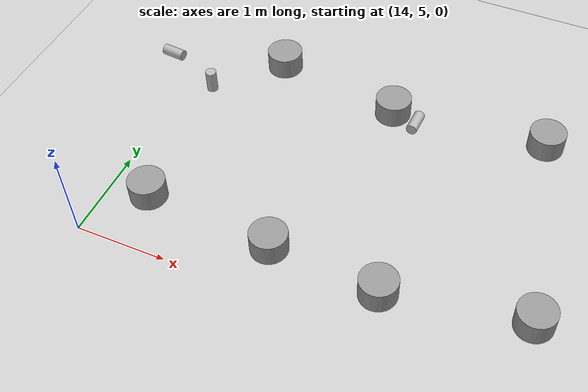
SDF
<sdf version="1.7">
 <world name="default">
  <model name="ground_plane">
   <static>1</static>
   <link name="link">
    <collision name="collision">
     <geometry><plane><normal>0 0 1</normal><size>100 100</size></plane></geometry>
     <surface>
      <contact><collide_bitmask>65535</collide_bitmask></contact>
      <friction><ode><mu>100</mu><mu2>50</mu2></ode></friction>
     </surface>
    </collision>
    <visual name="visual">
     <cast_shadows>0</cast_shadows>
     <geometry><plane><normal>0 0 1</normal><size>100 100</size></plane></geometry>
     <material>
      <script><uri>file://media/materials/scripts/gazebo.material</uri><name>Gazebo/Grey</name></script>
     </material>
    </visual>
   </link>
  </model>
  <model name="beer_2">
   <link name="link">
    <pose>0 0 0.115 0 -0 0</pose>
    <inertial>
     <mass>0.39</mass>
     <inertia><ixx>0.00058</ixx><ixy>0</ixy><ixz>0</ixz><iyy>0.00058</iyy><iyz>0</iyz><izz>0.00019</izz></inertia>
    </inertial>
    <collision name="collision">
     <geometry><cylinder><radius>0.055</radius><length>0.23</length></cylinder></geometry>
    </collision>
    <visual name="visual">
     <geometry><cylinder><radius>0.055</radius><length>0.23</length></cylinder></geometry>
     <material>
      <script>
       <uri>model://beer/materials/scripts</uri>
       <uri>model://beer/materials/textures</uri>
       <name>Beer/Diffuse</name>
      </script>
     </material>
    </visual>
   </link>
   <pose>16.8568 6.86545 0.829435 -1.5708 -1.07993 -0.0311</pose>
  </model>
  <model name="beer_3">
   <link name="link">
    <pose>0 0 0.115 0 -0 0</pose>
    <inertial>
     <mass>0.39</mass>
     <inertia><ixx>0.00058</ixx><ixy>0</ixy><ixz>0</ixz><iyy>0.00058</iyy><iyz>0</iyz><izz>0.00019</izz></inertia>
    </inertial>
    <collision name="collision">
     <geometry><cylinder><radius>0.055</radius><length>0.23</length></cylinder></geometry>
    </collision>
    <visual name="visual">
     <geometry><cylinder><radius>0.055</radius><length>0.23</length></cylinder></geometry>
     <material>
      <script>
       <uri>model://beer/materials/scripts</uri>
       <uri>model://beer/materials/textures</uri>
       <name>Beer/Diffuse</name>
      </script>
     </material>
    </visual>
   </link>
   <pose>14.0154 6.95953 0.829436 1.5708 1.47263 1.47263</pose>
  </model>
  <model name="beer_4">
   <link name="link">
    <pose>0 0 0.115 0 -0 0</pose>
    <inertial>
     <mass>0.39</mass>
     <inertia><ixx>0.00058</ixx><ixy>0</ixy><ixz>0</ixz><iyy>0.00058</iyy><iyz>0</iyz><izz>0.00019</izz></inertia>
    </inertial>
    <collision name="collision">
     <geometry><cylinder><radius>0.055</radius><length>0.23</length></cylinder></geometry>
    </collision>
    <visual name="visual">
     <geometry><cylinder><radius>0.055</radius><length>0.23</length></cylinder></geometry>
     <material>
      <script>
       <uri>model://beer/materials/scripts</uri>
       <uri>model://beer/materials/textures</uri>
       <name>Beer/Diffuse</name>
      </script>
     </material>
    </visual>
   </link>
   <pose>14.7411 6.66479 0.7747 0 -0 0</pose>
  </model>
  <model name="cylinder_6">
   <link name="link">
    <inertial>
     <mass>1</mass>
     <inertia><ixx>0.145833</ixx><ixy>0</ixy><ixz>0</ixz><iyy>0.145833</iyy><iyz>0</iyz><izz>0.125</izz></inertia>
    </inertial>
    <visual name="visual">
     <geometry><cylinder><radius>0.2</radius><length>0.5</length></cylinder></geometry>
     <material>
      <script><name>Gazebo/Grey</name><uri>file://media/materials/scripts/gazebo.material</uri></script>
      <shader type="pixel"><normal_map>__default__</normal_map></shader>
      <ambient>0.3 0.3 0.3 1</ambient>
      <diffuse>0.7 0.7 0.7 1</diffuse>
      <specular>0.01 0.01 0.01 1</specular>
      <emissive>0 0 0 1</emissive>
     </material>
    </visual>
    <collision name="collision">
     <geometry><cylinder><radius>0.2</radius><length>0.5</length></cylinder></geometry>
     <surface>
      <friction>
       <ode><mu>1</mu><mu2>1</mu2><fdir1>0 0 0</fdir1><slip1>0</slip1><slip2>0</slip2></ode>
       <torsional>
        <coefficient>1</coefficient>
        <patch_radius>0</patch_radius>
        <surface_radius>0</surface_radius>
        <use_patch_radius>1</use_patch_radius>
        <ode><slip>0</slip></ode>
       </torsional>
      </friction>
      <bounce><restitution_coefficient>0</restitution_coefficient><threshold>1e+06</threshold></bounce>
      <contact>
       <collide_without_contact>0</collide_without_contact>
       <collide_without_contact_bitmask>1</collide_without_contact_bitmask>
       <collide_bitmask>1</collide_bitmask>
       <ode>
        <soft_cfm>0</soft_cfm>
        <soft_erp>0.2</soft_erp>
        <kp>1e+13</kp>
        <kd>1</kd>
        <max_vel>0.01</max_vel>
        <min_depth>0</min_depth>
       </ode>
       <bullet>
        <split_impulse>1</split_impulse>
        <split_impulse_penetration_threshold>-0.01</split_impulse_penetration_threshold>
        <soft_cfm>0</soft_cfm>
        <soft_erp>0.2</soft_erp>
        <kp>1e+13</kp>
        <kd>1</kd>
       </bullet>
      </contact>
     </surface>
    </collision>
   </link>
   <static>0</static>
   <pose>14.4412 5.65842 0 0 -0 0</pose>
  </model>
  <model name="cylinder_7">
   <link name="link">
    <inertial>
     <mass>1</mass>
     <inertia><ixx>0.145833</ixx><ixy>0</ixy><ixz>0</ixz><iyy>0.145833</iyy><iyz>0</iyz><izz>0.125</izz></inertia>
    </inertial>
    <visual name="visual">
     <geometry><cylinder><radius>0.2</radius><length>0.5</length></cylinder></geometry>
     <material>
      <script><name>Gazebo/Grey</name><uri>file://media/materials/scripts/gazebo.material</uri></script>
      <shader type="pixel"><normal_map>__default__</normal_map></shader>
      <ambient>0.3 0.3 0.3 1</ambient>
      <diffuse>0.7 0.7 0.7 1</diffuse>
      <specular>0.01 0.01 0.01 1</specular>
      <emissive>0 0 0 1</emissive>
     </material>
    </visual>
    <collision name="collision">
     <geometry><cylinder><radius>0.2</radius><length>0.5</length></cylinder></geometry>
     <surface>
      <friction>
       <ode><mu>1</mu><mu2>1</mu2><fdir1>0 0 0</fdir1><slip1>0</slip1><slip2>0</slip2></ode>
       <torsional>
        <coefficient>1</coefficient>
        <patch_radius>0</patch_radius>
        <surface_radius>0</surface_radius>
        <use_patch_radius>1</use_patch_radius>
        <ode><slip>0</slip></ode>
       </torsional>
      </friction>
      <bounce><restitution_coefficient>0</restitution_coefficient><threshold>1e+06</threshold></bounce>
      <contact>
       <collide_without_contact>0</collide_without_contact>
       <collide_without_contact_bitmask>1</collide_without_contact_bitmask>
       <collide_bitmask>1</collide_bitmask>
       <ode>
        <soft_cfm>0</soft_cfm>
        <soft_erp>0.2</soft_erp>
        <kp>1e+13</kp>
        <kd>1</kd>
        <max_vel>0.01</max_vel>
        <min_depth>0</min_depth>
       </ode>
       <bullet>
        <split_impulse>1</split_impulse>
        <split_impulse_penetration_threshold>-0.01</split_impulse_penetration_threshold>
        <soft_cfm>0</soft_cfm>
        <soft_erp>0.2</soft_erp>
        <kp>1e+13</kp>
        <kd>1</kd>
       </bullet>
      </contact>
     </surface>
    </collision>
   </link>
   <static>0</static>
   <pose>15.8961 5.54249 0 0 -0 0</pose>
  </model>
  <model name="cylinder_8">
   <link name="link">
    <inertial>
     <mass>1</mass>
     <inertia><ixx>0.145833</ixx><ixy>0</ixy><ixz>0</ixz><iyy>0.145833</iyy><iyz>0</iyz><izz>0.125</izz></inertia>
    </inertial>
    <visual name="visual">
     <geometry><cylinder><radius>0.2</radius><length>0.5</length></cylinder></geometry>
     <material>
      <script><name>Gazebo/Grey</name><uri>file://media/materials/scripts/gazebo.material</uri></script>
      <shader type="pixel"><normal_map>__default__</normal_map></shader>
      <ambient>0.3 0.3 0.3 1</ambient>
      <diffuse>0.7 0.7 0.7 1</diffuse>
      <specular>0.01 0.01 0.01 1</specular>
      <emissive>0 0 0 1</emissive>
     </material>
    </visual>
    <collision name="collision">
     <geometry><cylinder><radius>0.2</radius><length>0.5</length></cylinder></geometry>
     <surface>
      <friction>
       <ode><mu>1</mu><mu2>1</mu2><fdir1>0 0 0</fdir1><slip1>0</slip1><slip2>0</slip2></ode>
       <torsional>
        <coefficient>1</coefficient>
        <patch_radius>0</patch_radius>
        <surface_radius>0</surface_radius>
        <use_patch_radius>1</use_patch_radius>
        <ode><slip>0</slip></ode>
       </torsional>
      </friction>
      <bounce><restitution_coefficient>0</restitution_coefficient><threshold>1e+06</threshold></bounce>
      <contact>
       <collide_without_contact>0</collide_without_contact>
       <collide_without_contact_bitmask>1</collide_without_contact_bitmask>
       <collide_bitmask>1</collide_bitmask>
       <ode>
        <soft_cfm>0</soft_cfm>
        <soft_erp>0.2</soft_erp>
        <kp>1e+13</kp>
        <kd>1</kd>
        <max_vel>0.01</max_vel>
        <min_depth>0</min_depth>
       </ode>
       <bullet>
        <split_impulse>1</split_impulse>
        <split_impulse_penetration_threshold>-0.01</split_impulse_penetration_threshold>
        <soft_cfm>0</soft_cfm>
        <soft_erp>0.2</soft_erp>
        <kp>1e+13</kp>
        <kd>1</kd>
       </bullet>
      </contact>
     </surface>
    </collision>
   </link>
   <static>0</static>
   <pose>17.0897 5.46299 0 0 -0 0</pose>
  </model>
  <model name="cylinder_9">
   <link name="link">
    <inertial>
     <mass>1</mass>
     <inertia><ixx>0.145833</ixx><ixy>0</ixy><ixz>0</ixz><iyy>0.145833</iyy><iyz>0</iyz><izz>0.125</izz></inertia>
    </inertial>
    <visual name="visual">
     <geometry><cylinder><radius>0.2</radius><length>0.5</length></cylinder></geometry>
     <material>
      <script><name>Gazebo/Grey</name><uri>file://media/materials/scripts/gazebo.material</uri></script>
      <shader type="pixel"><normal_map>__default__</normal_map></shader>
      <ambient>0.3 0.3 0.3 1</ambient>
      <diffuse>0.7 0.7 0.7 1</diffuse>
      <specular>0.01 0.01 0.01 1</specular>
      <emissive>0 0 0 1</emissive>
     </material>
    </visual>
    <collision name="collision">
     <geometry><cylinder><radius>0.2</radius><length>0.5</length></cylinder></geometry>
     <surface>
      <friction>
       <ode><mu>1</mu><mu2>1</mu2><fdir1>0 0 0</fdir1><slip1>0</slip1><slip2>0</slip2></ode>
       <torsional>
        <coefficient>1</coefficient>
        <patch_radius>0</patch_radius>
        <surface_radius>0</surface_radius>
        <use_patch_radius>1</use_patch_radius>
        <ode><slip>0</slip></ode>
       </torsional>
      </friction>
      <bounce><restitution_coefficient>0</restitution_coefficient><threshold>1e+06</threshold></bounce>
      <contact>
       <collide_without_contact>0</collide_without_contact>
       <collide_without_contact_bitmask>1</collide_without_contact_bitmask>
       <collide_bitmask>1</collide_bitmask>
       <ode>
        <soft_cfm>0</soft_cfm>
        <soft_erp>0.2</soft_erp>
        <kp>1e+13</kp>
        <kd>1</kd>
        <max_vel>0.01</max_vel>
        <min_depth>0</min_depth>
       </ode>
       <bullet>
        <split_impulse>1</split_impulse>
        <split_impulse_penetration_threshold>-0.01</split_impulse_penetration_threshold>
        <soft_cfm>0</soft_cfm>
        <soft_erp>0.2</soft_erp>
        <kp>1e+13</kp>
        <kd>1</kd>
       </bullet>
      </contact>
     </surface>
    </collision>
   </link>
   <static>0</static>
   <pose>18.5488 5.72037 0 0 -0 0</pose>
  </model>
  <model name="cylinder_11">
   <link name="link">
    <inertial>
     <mass>1</mass>
     <inertia><ixx>0.145833</ixx><ixy>0</ixy><ixz>0</ixz><iyy>0.145833</iyy><iyz>0</iyz><izz>0.125</izz></inertia>
    </inertial>
    <visual name="visual">
     <geometry><cylinder><radius>0.2</radius><length>0.5</length></cylinder></geometry>
     <material>
      <script><name>Gazebo/Grey</name><uri>file://media/materials/scripts/gazebo.material</uri></script>
      <shader type="pixel"><normal_map>__default__</normal_map></shader>
      <ambient>0.3 0.3 0.3 1</ambient>
      <diffuse>0.7 0.7 0.7 1</diffuse>
      <specular>0.01 0.01 0.01 1</specular>
      <emissive>0 0 0 1</emissive>
     </material>
    </visual>
    <collision name="collision">
     <geometry><cylinder><radius>0.2</radius><length>0.5</length></cylinder></geometry>
     <surface>
      <friction>
       <ode><mu>1</mu><mu2>1</mu2><fdir1>0 0 0</fdir1><slip1>0</slip1><slip2>0</slip2></ode>
       <torsional>
        <coefficient>1</coefficient>
        <patch_radius>0</patch_radius>
        <surface_radius>0</surface_radius>
        <use_patch_radius>1</use_patch_radius>
        <ode><slip>0</slip></ode>
       </torsional>
      </friction>
      <bounce><restitution_coefficient>0</restitution_coefficient><threshold>1e+06</threshold></bounce>
      <contact>
       <collide_without_contact>0</collide_without_contact>
       <collide_without_contact_bitmask>1</collide_without_contact_bitmask>
       <collide_bitmask>1</collide_bitmask>
       <ode>
        <soft_cfm>0</soft_cfm>
        <soft_erp>0.2</soft_erp>
        <kp>1e+13</kp>
        <kd>1</kd>
        <max_vel>0.01</max_vel>
        <min_depth>0</min_depth>
       </ode>
       <bullet>
        <split_impulse>1</split_impulse>
        <split_impulse_penetration_threshold>-0.01</split_impulse_penetration_threshold>
        <soft_cfm>0</soft_cfm>
        <soft_erp>0.2</soft_erp>
        <kp>1e+13</kp>
        <kd>1</kd>
       </bullet>
      </contact>
     </surface>
    </collision>
   </link>
   <static>0</static>
   <pose>14.8991 8.03375 0 0 -0 0</pose>
  </model>
  <model name="cylinder_12">
   <link name="link">
    <inertial>
     <mass>1</mass>
     <inertia><ixx>0.145833</ixx><ixy>0</ixy><ixz>0</ixz><iyy>0.145833</iyy><iyz>0</iyz><izz>0.125</izz></inertia>
    </inertial>
    <visual name="visual">
     <geometry><cylinder><radius>0.2</radius><length>0.5</length></cylinder></geometry>
     <material>
      <script><name>Gazebo/Grey</name><uri>file://media/materials/scripts/gazebo.material</uri></script>
      <shader type="pixel"><normal_map>__default__</normal_map></shader>
      <ambient>0.3 0.3 0.3 1</ambient>
      <diffuse>0.7 0.7 0.7 1</diffuse>
      <specular>0.01 0.01 0.01 1</specular>
      <emissive>0 0 0 1</emissive>
     </material>
    </visual>
    <collision name="collision">
     <geometry><cylinder><radius>0.2</radius><length>0.5</length></cylinder></geometry>
     <surface>
      <friction>
       <ode><mu>1</mu><mu2>1</mu2><fdir1>0 0 0</fdir1><slip1>0</slip1><slip2>0</slip2></ode>
       <torsional>
        <coefficient>1</coefficient>
        <patch_radius>0</patch_radius>
        <surface_radius>0</surface_radius>
        <use_patch_radius>1</use_patch_radius>
        <ode><slip>0</slip></ode>
       </torsional>
      </friction>
      <bounce><restitution_coefficient>0</restitution_coefficient><threshold>1e+06</threshold></bounce>
      <contact>
       <collide_without_contact>0</collide_without_contact>
       <collide_without_contact_bitmask>1</collide_without_contact_bitmask>
       <collide_bitmask>1</collide_bitmask>
       <ode>
        <soft_cfm>0</soft_cfm>
        <soft_erp>0.2</soft_erp>
        <kp>1e+13</kp>
        <kd>1</kd>
        <max_vel>0.01</max_vel>
        <min_depth>0</min_depth>
       </ode>
       <bullet>
        <split_impulse>1</split_impulse>
        <split_impulse_penetration_threshold>-0.01</split_impulse_penetration_threshold>
        <soft_cfm>0</soft_cfm>
        <soft_erp>0.2</soft_erp>
        <kp>1e+13</kp>
        <kd>1</kd>
       </bullet>
      </contact>
     </surface>
    </collision>
   </link>
   <static>0</static>
   <pose>16.3537 7.79785 0 0 -0 0</pose>
  </model>
  <model name="cylinder_13">
   <link name="link">
    <inertial>
     <mass>1</mass>
     <inertia><ixx>0.145833</ixx><ixy>0</ixy><ixz>0</ixz><iyy>0.145833</iyy><iyz>0</iyz><izz>0.125</izz></inertia>
    </inertial>
    <visual name="visual">
     <geometry><cylinder><radius>0.2</radius><length>0.5</length></cylinder></geometry>
     <material>
      <script><name>Gazebo/Grey</name><uri>file://media/materials/scripts/gazebo.material</uri></script>
      <shader type="pixel"><normal_map>__default__</normal_map></shader>
      <ambient>0.3 0.3 0.3 1</ambient>
      <diffuse>0.7 0.7 0.7 1</diffuse>
      <specular>0.01 0.01 0.01 1</specular>
      <emissive>0 0 0 1</emissive>
     </material>
    </visual>
    <collision name="collision">
     <geometry><cylinder><radius>0.2</radius><length>0.5</length></cylinder></geometry>
     <surface>
      <friction>
       <ode><mu>1</mu><mu2>1</mu2><fdir1>0 0 0</fdir1><slip1>0</slip1><slip2>0</slip2></ode>
       <torsional>
        <coefficient>1</coefficient>
        <patch_radius>0</patch_radius>
        <surface_radius>0</surface_radius>
        <use_patch_radius>1</use_patch_radius>
        <ode><slip>0</slip></ode>
       </torsional>
      </friction>
      <bounce><restitution_coefficient>0</restitution_coefficient><threshold>1e+06</threshold></bounce>
      <contact>
       <collide_without_contact>0</collide_without_contact>
       <collide_without_contact_bitmask>1</collide_without_contact_bitmask>
       <collide_bitmask>1</collide_bitmask>
       <ode>
        <soft_cfm>0</soft_cfm>
        <soft_erp>0.2</soft_erp>
        <kp>1e+13</kp>
        <kd>1</kd>
        <max_vel>0.01</max_vel>
        <min_depth>0</min_depth>
       </ode>
       <bullet>
        <split_impulse>1</split_impulse>
        <split_impulse_penetration_threshold>-0.01</split_impulse_penetration_threshold>
        <soft_cfm>0</soft_cfm>
        <soft_erp>0.2</soft_erp>
        <kp>1e+13</kp>
        <kd>1</kd>
       </bullet>
      </contact>
     </surface>
    </collision>
   </link>
   <static>0</static>
   <pose>18.0712 7.9669 0 0 -0 0</pose>
  </model>
 </world>
</sdf>
